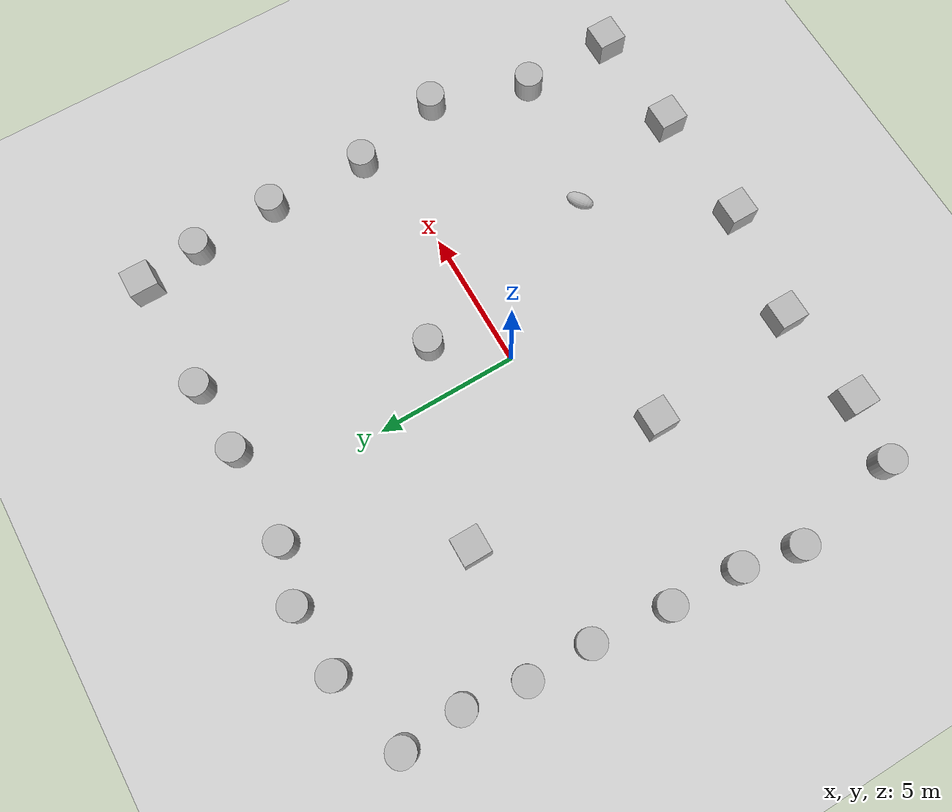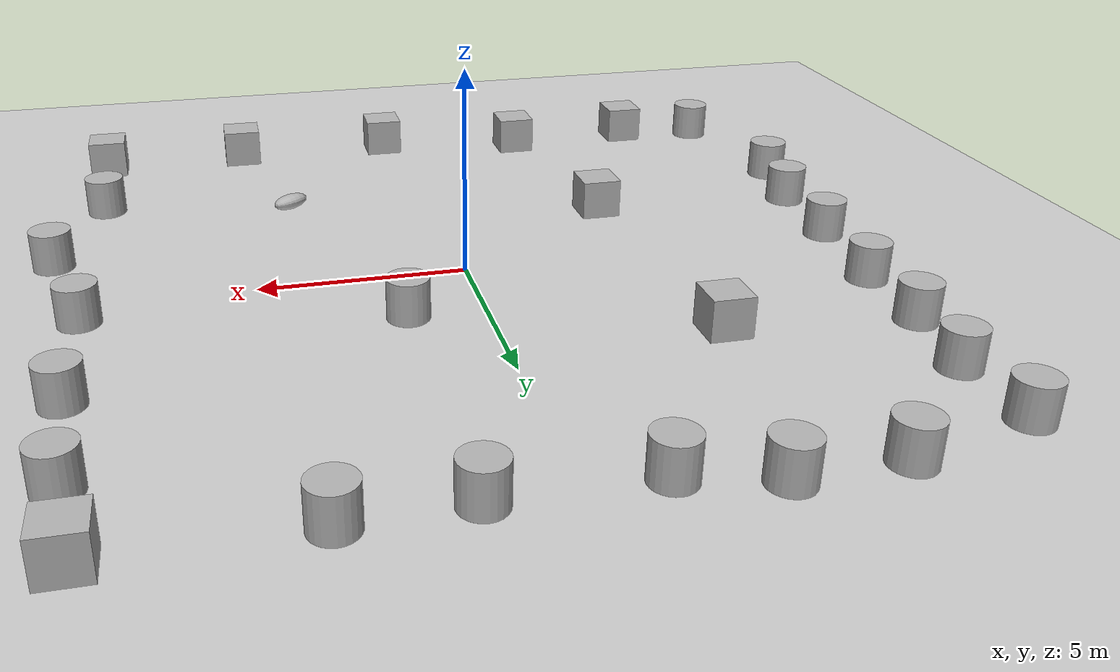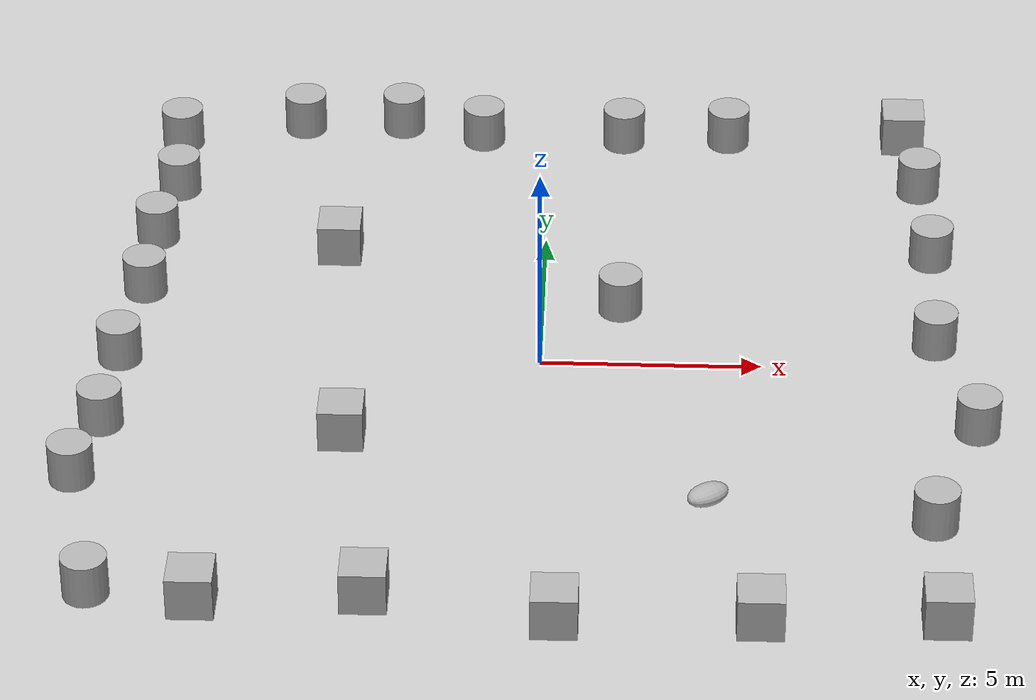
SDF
<sdf version='1.9'>
  <world name='empty'>
    <physics name='1ms' type='ignored'>
      <max_step_size>0.001</max_step_size>
      <real_time_factor>1</real_time_factor>
      <real_time_update_rate>1000</real_time_update_rate>
    </physics>
    <plugin name='gz::sim::systems::Physics' filename='ignition-gazebo-physics-system'/>
    <plugin name='gz::sim::systems::UserCommands' filename='ignition-gazebo-user-commands-system'/>
    <plugin name='gz::sim::systems::SceneBroadcaster' filename='ignition-gazebo-scene-broadcaster-system'/>
    <plugin name='gz::sim::systems::Contact' filename='ignition-gazebo-contact-system'/>
    <gravity>0 0 -9.8</gravity>
    <magnetic_field>6e-06 2.3e-05 -4.2e-05</magnetic_field>
    <atmosphere type='adiabatic'/>
    <scene>
      <ambient>0.4 0.4 0.4 1</ambient>
      <background>0.7 0.7 0.7 1</background>
      <shadows>true</shadows>
    </scene>
    <model name='ground_plane'>
      <static>true</static>
      <link name='link'>
        <collision name='collision'>
          <geometry>
            <plane>
              <normal>0 0 1</normal>
              <size>100 100</size>
            </plane>
          </geometry>
          <surface>
            <friction>
              <ode/>
            </friction>
            <bounce/>
            <contact/>
          </surface>
        </collision>
        <visual name='visual'>
          <geometry>
            <plane>
              <normal>0 0 1</normal>
              <size>100 100</size>
            </plane>
          </geometry>
          <material>
            <ambient>0.8 0.8 0.8 1</ambient>
            <diffuse>0.8 0.8 0.8 1</diffuse>
            <specular>0.8 0.8 0.8 1</specular>
          </material>
        </visual>
        <pose>0 0 0 0 -0 0</pose>
        <inertial>
          <pose>0 0 0 0 -0 0</pose>
          <mass>1</mass>
          <inertia>
            <ixx>1</ixx>
            <ixy>0</ixy>
            <ixz>0</ixz>
            <iyy>1</iyy>
            <iyz>0</iyz>
            <izz>1</izz>
          </inertia>
        </inertial>
        <enable_wind>false</enable_wind>
      </link>
      <pose>0 0 0 0 -0 0</pose>
      <self_collide>false</self_collide>
    </model>
    <model name='box'>
      <pose>8.5744 9.56283 0.5 0 0 -0</pose>
      <link name='box_link'>
        <inertial>
          <inertia>
            <ixx>0.16666</ixx>
            <ixy>0</ixy>
            <ixz>0</ixz>
            <iyy>0.16666</iyy>
            <iyz>0</iyz>
            <izz>0.16666</izz>
          </inertia>
          <mass>1</mass>
          <pose>0 0 0 0 -0 0</pose>
        </inertial>
        <collision name='box_collision'>
          <geometry>
            <box>
              <size>1 1 1</size>
            </box>
          </geometry>
          <surface>
            <friction>
              <ode/>
            </friction>
            <bounce/>
            <contact/>
          </surface>
        </collision>
        <visual name='box_visual'>
          <geometry>
            <box>
              <size>1 1 1</size>
            </box>
          </geometry>
          <material>
            <ambient>0.3 0.3 0.3 1</ambient>
            <diffuse>0.7 0.7 0.7 1</diffuse>
            <specular>1 1 1 1</specular>
          </material>
        </visual>
        <pose>0 0 0 0 -0 0</pose>
        <enable_wind>false</enable_wind>
      </link>
      <static>false</static>
      <self_collide>false</self_collide>
    </model>
    <model name='box_0'>
      <pose>8.7202 -9.15503 0.5 0 0 -0</pose>
      <link name='box_link'>
        <inertial>
          <inertia>
            <ixx>0.16666</ixx>
            <ixy>0</ixy>
            <ixz>0</ixz>
            <iyy>0.16666</iyy>
            <iyz>0</iyz>
            <izz>0.16666</izz>
          </inertia>
          <mass>1</mass>
          <pose>0 0 0 0 -0 0</pose>
        </inertial>
        <collision name='box_collision'>
          <geometry>
            <box>
              <size>1 1 1</size>
            </box>
          </geometry>
          <surface>
            <friction>
              <ode/>
            </friction>
            <bounce/>
            <contact/>
          </surface>
        </collision>
        <visual name='box_visual'>
          <geometry>
            <box>
              <size>1 1 1</size>
            </box>
          </geometry>
          <material>
            <ambient>0.3 0.3 0.3 1</ambient>
            <diffuse>0.7 0.7 0.7 1</diffuse>
            <specular>1 1 1 1</specular>
          </material>
        </visual>
        <pose>0 0 0 0 -0 0</pose>
        <enable_wind>false</enable_wind>
      </link>
      <static>false</static>
      <self_collide>false</self_collide>
    </model>
    <model name='cylinder'>
      <pose>8.94967 0.857572 0.499999 0 0 0</pose>
      <link name='cylinder_link'>
        <inertial>
          <inertia>
            <ixx>0.14580000000000001</ixx>
            <ixy>0</ixy>
            <ixz>0</ixz>
            <iyy>0.14580000000000001</iyy>
            <iyz>0</iyz>
            <izz>0.125</izz>
          </inertia>
          <mass>1</mass>
          <pose>0 0 0 0 -0 0</pose>
        </inertial>
        <collision name='cylinder_collision'>
          <geometry>
            <cylinder>
              <radius>0.5</radius>
              <length>1</length>
            </cylinder>
          </geometry>
          <surface>
            <friction>
              <ode/>
            </friction>
            <bounce/>
            <contact/>
          </surface>
        </collision>
        <visual name='cylinder_visual'>
          <geometry>
            <cylinder>
              <radius>0.5</radius>
              <length>1</length>
            </cylinder>
          </geometry>
          <material>
            <ambient>0.3 0.3 0.3 1</ambient>
            <diffuse>0.7 0.7 0.7 1</diffuse>
            <specular>1 1 1 1</specular>
          </material>
        </visual>
        <pose>0 0 0 0 -0 0</pose>
        <enable_wind>false</enable_wind>
      </link>
      <static>false</static>
      <self_collide>false</self_collide>
    </model>
    <model name='cylinder_0'>
      <pose>8.87457 7.37275 0.499999 -0 -0 0</pose>
      <link name='cylinder_link'>
        <inertial>
          <inertia>
            <ixx>0.14580000000000001</ixx>
            <ixy>0</ixy>
            <ixz>0</ixz>
            <iyy>0.14580000000000001</iyy>
            <iyz>0</iyz>
            <izz>0.125</izz>
          </inertia>
          <mass>1</mass>
          <pose>0 0 0 0 -0 0</pose>
        </inertial>
        <collision name='cylinder_collision'>
          <geometry>
            <cylinder>
              <radius>0.5</radius>
              <length>1</length>
            </cylinder>
          </geometry>
          <surface>
            <friction>
              <ode/>
            </friction>
            <bounce/>
            <contact/>
          </surface>
        </collision>
        <visual name='cylinder_visual'>
          <geometry>
            <cylinder>
              <radius>0.5</radius>
              <length>1</length>
            </cylinder>
          </geometry>
          <material>
            <ambient>0.3 0.3 0.3 1</ambient>
            <diffuse>0.7 0.7 0.7 1</diffuse>
            <specular>1 1 1 1</specular>
          </material>
        </visual>
        <pose>0 0 0 0 -0 0</pose>
        <enable_wind>false</enable_wind>
      </link>
      <static>false</static>
      <self_collide>false</self_collide>
    </model>
    <model name='cylinder_1'>
      <pose>9.03047 4.41012 0.499999 0 0 0</pose>
      <link name='cylinder_link'>
        <inertial>
          <inertia>
            <ixx>0.14580000000000001</ixx>
            <ixy>0</ixy>
            <ixz>0</ixz>
            <iyy>0.14580000000000001</iyy>
            <iyz>0</iyz>
            <izz>0.125</izz>
          </inertia>
          <mass>1</mass>
          <pose>0 0 0 0 -0 0</pose>
        </inertial>
        <collision name='cylinder_collision'>
          <geometry>
            <cylinder>
              <radius>0.5</radius>
              <length>1</length>
            </cylinder>
          </geometry>
          <surface>
            <friction>
              <ode/>
            </friction>
            <bounce/>
            <contact/>
          </surface>
        </collision>
        <visual name='cylinder_visual'>
          <geometry>
            <cylinder>
              <radius>0.5</radius>
              <length>1</length>
            </cylinder>
          </geometry>
          <material>
            <ambient>0.3 0.3 0.3 1</ambient>
            <diffuse>0.7 0.7 0.7 1</diffuse>
            <specular>1 1 1 1</specular>
          </material>
        </visual>
        <pose>0 0 0 0 -0 0</pose>
        <enable_wind>false</enable_wind>
      </link>
      <static>false</static>
      <self_collide>false</self_collide>
    </model>
    <model name='cylinder_2'>
      <pose>9.74939 -2.37277 0.499999 -0 0 0</pose>
      <link name='cylinder_link'>
        <inertial>
          <inertia>
            <ixx>0.14580000000000001</ixx>
            <ixy>0</ixy>
            <ixz>0</ixz>
            <iyy>0.14580000000000001</iyy>
            <iyz>0</iyz>
            <izz>0.125</izz>
          </inertia>
          <mass>1</mass>
          <pose>0 0 0 0 -0 0</pose>
        </inertial>
        <collision name='cylinder_collision'>
          <geometry>
            <cylinder>
              <radius>0.5</radius>
              <length>1</length>
            </cylinder>
          </geometry>
          <surface>
            <friction>
              <ode/>
            </friction>
            <bounce/>
            <contact/>
          </surface>
        </collision>
        <visual name='cylinder_visual'>
          <geometry>
            <cylinder>
              <radius>0.5</radius>
              <length>1</length>
            </cylinder>
          </geometry>
          <material>
            <ambient>0.3 0.3 0.3 1</ambient>
            <diffuse>0.7 0.7 0.7 1</diffuse>
            <specular>1 1 1 1</specular>
          </material>
        </visual>
        <pose>0 0 0 0 -0 0</pose>
        <enable_wind>false</enable_wind>
      </link>
      <static>false</static>
      <self_collide>false</self_collide>
    </model>
    <model name='cylinder_3'>
      <pose>8.65067 -5.82261 0.499999 -0 -0 -0</pose>
      <link name='cylinder_link'>
        <inertial>
          <inertia>
            <ixx>0.14580000000000001</ixx>
            <ixy>0</ixy>
            <ixz>0</ixz>
            <iyy>0.14580000000000001</iyy>
            <iyz>0</iyz>
            <izz>0.125</izz>
          </inertia>
          <mass>1</mass>
          <pose>0 0 0 0 -0 0</pose>
        </inertial>
        <collision name='cylinder_collision'>
          <geometry>
            <cylinder>
              <radius>0.5</radius>
              <length>1</length>
            </cylinder>
          </geometry>
          <surface>
            <friction>
              <ode/>
            </friction>
            <bounce/>
            <contact/>
          </surface>
        </collision>
        <visual name='cylinder_visual'>
          <geometry>
            <cylinder>
              <radius>0.5</radius>
              <length>1</length>
            </cylinder>
          </geometry>
          <material>
            <ambient>0.3 0.3 0.3 1</ambient>
            <diffuse>0.7 0.7 0.7 1</diffuse>
            <specular>1 1 1 1</specular>
          </material>
        </visual>
        <pose>0 0 0 0 -0 0</pose>
        <enable_wind>false</enable_wind>
      </link>
      <static>false</static>
      <self_collide>false</self_collide>
    </model>
    <model name='cylinder_4'>
      <pose>4.32624 9.49917 0.499999 -0 0 -0</pose>
      <link name='cylinder_link'>
        <inertial>
          <inertia>
            <ixx>0.14580000000000001</ixx>
            <ixy>0</ixy>
            <ixz>0</ixz>
            <iyy>0.14580000000000001</iyy>
            <iyz>0</iyz>
            <izz>0.125</izz>
          </inertia>
          <mass>1</mass>
          <pose>0 0 0 0 -0 0</pose>
        </inertial>
        <collision name='cylinder_collision'>
          <geometry>
            <cylinder>
              <radius>0.5</radius>
              <length>1</length>
            </cylinder>
          </geometry>
          <surface>
            <friction>
              <ode/>
            </friction>
            <bounce/>
            <contact/>
          </surface>
        </collision>
        <visual name='cylinder_visual'>
          <geometry>
            <cylinder>
              <radius>0.5</radius>
              <length>1</length>
            </cylinder>
          </geometry>
          <material>
            <ambient>0.3 0.3 0.3 1</ambient>
            <diffuse>0.7 0.7 0.7 1</diffuse>
            <specular>1 1 1 1</specular>
          </material>
        </visual>
        <pose>0 0 0 0 -0 0</pose>
        <enable_wind>false</enable_wind>
      </link>
      <static>false</static>
      <self_collide>false</self_collide>
    </model>
    <model name='cylinder_5'>
      <pose>1.7731 9.40921 0.499999 0 -0 -0</pose>
      <link name='cylinder_link'>
        <inertial>
          <inertia>
            <ixx>0.14580000000000001</ixx>
            <ixy>0</ixy>
            <ixz>0</ixz>
            <iyy>0.14580000000000001</iyy>
            <iyz>0</iyz>
            <izz>0.125</izz>
          </inertia>
          <mass>1</mass>
          <pose>0 0 0 0 -0 0</pose>
        </inertial>
        <collision name='cylinder_collision'>
          <geometry>
            <cylinder>
              <radius>0.5</radius>
              <length>1</length>
            </cylinder>
          </geometry>
          <surface>
            <friction>
              <ode/>
            </friction>
            <bounce/>
            <contact/>
          </surface>
        </collision>
        <visual name='cylinder_visual'>
          <geometry>
            <cylinder>
              <radius>0.5</radius>
              <length>1</length>
            </cylinder>
          </geometry>
          <material>
            <ambient>0.3 0.3 0.3 1</ambient>
            <diffuse>0.7 0.7 0.7 1</diffuse>
            <specular>1 1 1 1</specular>
          </material>
        </visual>
        <pose>0 0 0 0 -0 0</pose>
        <enable_wind>false</enable_wind>
      </link>
      <static>false</static>
      <self_collide>false</self_collide>
    </model>
    <model name='cylinder_6'>
      <pose>-1.65321 9.41891 0.499999 0 0 0</pose>
      <link name='cylinder_link'>
        <inertial>
          <inertia>
            <ixx>0.14580000000000001</ixx>
            <ixy>0</ixy>
            <ixz>0</ixz>
            <iyy>0.14580000000000001</iyy>
            <iyz>0</iyz>
            <izz>0.125</izz>
          </inertia>
          <mass>1</mass>
          <pose>0 0 0 0 -0 0</pose>
        </inertial>
        <collision name='cylinder_collision'>
          <geometry>
            <cylinder>
              <radius>0.5</radius>
              <length>1</length>
            </cylinder>
          </geometry>
          <surface>
            <friction>
              <ode/>
            </friction>
            <bounce/>
            <contact/>
          </surface>
        </collision>
        <visual name='cylinder_visual'>
          <geometry>
            <cylinder>
              <radius>0.5</radius>
              <length>1</length>
            </cylinder>
          </geometry>
          <material>
            <ambient>0.3 0.3 0.3 1</ambient>
            <diffuse>0.7 0.7 0.7 1</diffuse>
            <specular>1 1 1 1</specular>
          </material>
        </visual>
        <pose>0 0 0 0 -0 0</pose>
        <enable_wind>false</enable_wind>
      </link>
      <static>false</static>
      <self_collide>false</self_collide>
    </model>
    <model name='cylinder_7'>
      <pose>-3.64401 9.94116 0.499999 -0 -0 -0</pose>
      <link name='cylinder_link'>
        <inertial>
          <inertia>
            <ixx>0.14580000000000001</ixx>
            <ixy>0</ixy>
            <ixz>0</ixz>
            <iyy>0.14580000000000001</iyy>
            <iyz>0</iyz>
            <izz>0.125</izz>
          </inertia>
          <mass>1</mass>
          <pose>0 0 0 0 -0 0</pose>
        </inertial>
        <collision name='cylinder_collision'>
          <geometry>
            <cylinder>
              <radius>0.5</radius>
              <length>1</length>
            </cylinder>
          </geometry>
          <surface>
            <friction>
              <ode/>
            </friction>
            <bounce/>
            <contact/>
          </surface>
        </collision>
        <visual name='cylinder_visual'>
          <geometry>
            <cylinder>
              <radius>0.5</radius>
              <length>1</length>
            </cylinder>
          </geometry>
          <material>
            <ambient>0.3 0.3 0.3 1</ambient>
            <diffuse>0.7 0.7 0.7 1</diffuse>
            <specular>1 1 1 1</specular>
          </material>
        </visual>
        <pose>0 0 0 0 -0 0</pose>
        <enable_wind>false</enable_wind>
      </link>
      <static>false</static>
      <self_collide>false</self_collide>
    </model>
    <model name='cylinder_8'>
      <pose>-6.05976 9.85279 0.499999 0 -0 0</pose>
      <link name='cylinder_link'>
        <inertial>
          <inertia>
            <ixx>0.14580000000000001</ixx>
            <ixy>0</ixy>
            <ixz>0</ixz>
            <iyy>0.14580000000000001</iyy>
            <iyz>0</iyz>
            <izz>0.125</izz>
          </inertia>
          <mass>1</mass>
          <pose>0 0 0 0 -0 0</pose>
        </inertial>
        <collision name='cylinder_collision'>
          <geometry>
            <cylinder>
              <radius>0.5</radius>
              <length>1</length>
            </cylinder>
          </geometry>
          <surface>
            <friction>
              <ode/>
            </friction>
            <bounce/>
            <contact/>
          </surface>
        </collision>
        <visual name='cylinder_visual'>
          <geometry>
            <cylinder>
              <radius>0.5</radius>
              <length>1</length>
            </cylinder>
          </geometry>
          <material>
            <ambient>0.3 0.3 0.3 1</ambient>
            <diffuse>0.7 0.7 0.7 1</diffuse>
            <specular>1 1 1 1</specular>
          </material>
        </visual>
        <pose>0 0 0 0 -0 0</pose>
        <enable_wind>false</enable_wind>
      </link>
      <static>false</static>
      <self_collide>false</self_collide>
    </model>
    <model name='cylinder_9'>
      <pose>-9.01807 9.08427 0.499999 0 -0 -0</pose>
      <link name='cylinder_link'>
        <inertial>
          <inertia>
            <ixx>0.14580000000000001</ixx>
            <ixy>0</ixy>
            <ixz>0</ixz>
            <iyy>0.14580000000000001</iyy>
            <iyz>0</iyz>
            <izz>0.125</izz>
          </inertia>
          <mass>1</mass>
          <pose>0 0 0 0 -0 0</pose>
        </inertial>
        <collision name='cylinder_collision'>
          <geometry>
            <cylinder>
              <radius>0.5</radius>
              <length>1</length>
            </cylinder>
          </geometry>
          <surface>
            <friction>
              <ode/>
            </friction>
            <bounce/>
            <contact/>
          </surface>
        </collision>
        <visual name='cylinder_visual'>
          <geometry>
            <cylinder>
              <radius>0.5</radius>
              <length>1</length>
            </cylinder>
          </geometry>
          <material>
            <ambient>0.3 0.3 0.3 1</ambient>
            <diffuse>0.7 0.7 0.7 1</diffuse>
            <specular>1 1 1 1</specular>
          </material>
        </visual>
        <pose>0 0 0 0 -0 0</pose>
        <enable_wind>false</enable_wind>
      </link>
      <static>false</static>
      <self_collide>false</self_collide>
    </model>
    <model name='cylinder_10'>
      <pose>-8.88274 6.95423 0.499999 -0 0 -0</pose>
      <link name='cylinder_link'>
        <inertial>
          <inertia>
            <ixx>0.14580000000000001</ixx>
            <ixy>0</ixy>
            <ixz>0</ixz>
            <iyy>0.14580000000000001</iyy>
            <iyz>0</iyz>
            <izz>0.125</izz>
          </inertia>
          <mass>1</mass>
          <pose>0 0 0 0 -0 0</pose>
        </inertial>
        <collision name='cylinder_collision'>
          <geometry>
            <cylinder>
              <radius>0.5</radius>
              <length>1</length>
            </cylinder>
          </geometry>
          <surface>
            <friction>
              <ode/>
            </friction>
            <bounce/>
            <contact/>
          </surface>
        </collision>
        <visual name='cylinder_visual'>
          <geometry>
            <cylinder>
              <radius>0.5</radius>
              <length>1</length>
            </cylinder>
          </geometry>
          <material>
            <ambient>0.3 0.3 0.3 1</ambient>
            <diffuse>0.7 0.7 0.7 1</diffuse>
            <specular>1 1 1 1</specular>
          </material>
        </visual>
        <pose>0 0 0 0 -0 0</pose>
        <enable_wind>false</enable_wind>
      </link>
      <static>false</static>
      <self_collide>false</self_collide>
    </model>
    <model name='cylinder_11'>
      <pose>-9.18817 4.83261 0.499999 0 0 0</pose>
      <link name='cylinder_link'>
        <inertial>
          <inertia>
            <ixx>0.14580000000000001</ixx>
            <ixy>0</ixy>
            <ixz>0</ixz>
            <iyy>0.14580000000000001</iyy>
            <iyz>0</iyz>
            <izz>0.125</izz>
          </inertia>
          <mass>1</mass>
          <pose>0 0 0 0 -0 0</pose>
        </inertial>
        <collision name='cylinder_collision'>
          <geometry>
            <cylinder>
              <radius>0.5</radius>
              <length>1</length>
            </cylinder>
          </geometry>
          <surface>
            <friction>
              <ode/>
            </friction>
            <bounce/>
            <contact/>
          </surface>
        </collision>
        <visual name='cylinder_visual'>
          <geometry>
            <cylinder>
              <radius>0.5</radius>
              <length>1</length>
            </cylinder>
          </geometry>
          <material>
            <ambient>0.3 0.3 0.3 1</ambient>
            <diffuse>0.7 0.7 0.7 1</diffuse>
            <specular>1 1 1 1</specular>
          </material>
        </visual>
        <pose>0 0 0 0 -0 0</pose>
        <enable_wind>false</enable_wind>
      </link>
      <static>false</static>
      <self_collide>false</self_collide>
    </model>
    <model name='cylinder_12'>
      <pose>-9.24109 2.59309 0.499999 0 0 0</pose>
      <link name='cylinder_link'>
        <inertial>
          <inertia>
            <ixx>0.14580000000000001</ixx>
            <ixy>0</ixy>
            <ixz>0</ixz>
            <iyy>0.14580000000000001</iyy>
            <iyz>0</iyz>
            <izz>0.125</izz>
          </inertia>
          <mass>1</mass>
          <pose>0 0 0 0 -0 0</pose>
        </inertial>
        <collision name='cylinder_collision'>
          <geometry>
            <cylinder>
              <radius>0.5</radius>
              <length>1</length>
            </cylinder>
          </geometry>
          <surface>
            <friction>
              <ode/>
            </friction>
            <bounce/>
            <contact/>
          </surface>
        </collision>
        <visual name='cylinder_visual'>
          <geometry>
            <cylinder>
              <radius>0.5</radius>
              <length>1</length>
            </cylinder>
          </geometry>
          <material>
            <ambient>0.3 0.3 0.3 1</ambient>
            <diffuse>0.7 0.7 0.7 1</diffuse>
            <specular>1 1 1 1</specular>
          </material>
        </visual>
        <pose>0 0 0 0 -0 0</pose>
        <enable_wind>false</enable_wind>
      </link>
      <static>false</static>
      <self_collide>false</self_collide>
    </model>
    <model name='cylinder_13'>
      <pose>-9.53051 -0.128736 0.499999 -0 0 -0</pose>
      <link name='cylinder_link'>
        <inertial>
          <inertia>
            <ixx>0.14580000000000001</ixx>
            <ixy>0</ixy>
            <ixz>0</ixz>
            <iyy>0.14580000000000001</iyy>
            <iyz>0</iyz>
            <izz>0.125</izz>
          </inertia>
          <mass>1</mass>
          <pose>0 0 0 0 -0 0</pose>
        </inertial>
        <collision name='cylinder_collision'>
          <geometry>
            <cylinder>
              <radius>0.5</radius>
              <length>1</length>
            </cylinder>
          </geometry>
          <surface>
            <friction>
              <ode/>
            </friction>
            <bounce/>
            <contact/>
          </surface>
        </collision>
        <visual name='cylinder_visual'>
          <geometry>
            <cylinder>
              <radius>0.5</radius>
              <length>1</length>
            </cylinder>
          </geometry>
          <material>
            <ambient>0.3 0.3 0.3 1</ambient>
            <diffuse>0.7 0.7 0.7 1</diffuse>
            <specular>1 1 1 1</specular>
          </material>
        </visual>
        <pose>0 0 0 0 -0 0</pose>
        <enable_wind>false</enable_wind>
      </link>
      <static>false</static>
      <self_collide>false</self_collide>
    </model>
    <model name='cylinder_14'>
      <pose>-9.66911 -2.64317 0.499999 0 0 0</pose>
      <link name='cylinder_link'>
        <inertial>
          <inertia>
            <ixx>0.14580000000000001</ixx>
            <ixy>0</ixy>
            <ixz>0</ixz>
            <iyy>0.14580000000000001</iyy>
            <iyz>0</iyz>
            <izz>0.125</izz>
          </inertia>
          <mass>1</mass>
          <pose>0 0 0 0 -0 0</pose>
        </inertial>
        <collision name='cylinder_collision'>
          <geometry>
            <cylinder>
              <radius>0.5</radius>
              <length>1</length>
            </cylinder>
          </geometry>
          <surface>
            <friction>
              <ode/>
            </friction>
            <bounce/>
            <contact/>
          </surface>
        </collision>
        <visual name='cylinder_visual'>
          <geometry>
            <cylinder>
              <radius>0.5</radius>
              <length>1</length>
            </cylinder>
          </geometry>
          <material>
            <ambient>0.3 0.3 0.3 1</ambient>
            <diffuse>0.7 0.7 0.7 1</diffuse>
            <specular>1 1 1 1</specular>
          </material>
        </visual>
        <pose>0 0 0 0 -0 0</pose>
        <enable_wind>false</enable_wind>
      </link>
      <static>false</static>
      <self_collide>false</self_collide>
    </model>
    <model name='cylinder_15'>
      <pose>-10.0701 -4.69324 0.499999 0 0 -0</pose>
      <link name='cylinder_link'>
        <inertial>
          <inertia>
            <ixx>0.14580000000000001</ixx>
            <ixy>0</ixy>
            <ixz>0</ixz>
            <iyy>0.14580000000000001</iyy>
            <iyz>0</iyz>
            <izz>0.125</izz>
          </inertia>
          <mass>1</mass>
          <pose>0 0 0 0 -0 0</pose>
        </inertial>
        <collision name='cylinder_collision'>
          <geometry>
            <cylinder>
              <radius>0.5</radius>
              <length>1</length>
            </cylinder>
          </geometry>
          <surface>
            <friction>
              <ode/>
            </friction>
            <bounce/>
            <contact/>
          </surface>
        </collision>
        <visual name='cylinder_visual'>
          <geometry>
            <cylinder>
              <radius>0.5</radius>
              <length>1</length>
            </cylinder>
          </geometry>
          <material>
            <ambient>0.3 0.3 0.3 1</ambient>
            <diffuse>0.7 0.7 0.7 1</diffuse>
            <specular>1 1 1 1</specular>
          </material>
        </visual>
        <pose>0 0 0 0 -0 0</pose>
        <enable_wind>false</enable_wind>
      </link>
      <static>false</static>
      <self_collide>false</self_collide>
    </model>
    <model name='cylinder_16'>
      <pose>-9.27877 -8.67694 0.499999 0 -0 0</pose>
      <link name='cylinder_link'>
        <inertial>
          <inertia>
            <ixx>0.14580000000000001</ixx>
            <ixy>0</ixy>
            <ixz>0</ixz>
            <iyy>0.14580000000000001</iyy>
            <iyz>0</iyz>
            <izz>0.125</izz>
          </inertia>
          <mass>1</mass>
          <pose>0 0 0 0 -0 0</pose>
        </inertial>
        <collision name='cylinder_collision'>
          <geometry>
            <cylinder>
              <radius>0.5</radius>
              <length>1</length>
            </cylinder>
          </geometry>
          <surface>
            <friction>
              <ode/>
            </friction>
            <bounce/>
            <contact/>
          </surface>
        </collision>
        <visual name='cylinder_visual'>
          <geometry>
            <cylinder>
              <radius>0.5</radius>
              <length>1</length>
            </cylinder>
          </geometry>
          <material>
            <ambient>0.3 0.3 0.3 1</ambient>
            <diffuse>0.7 0.7 0.7 1</diffuse>
            <specular>1 1 1 1</specular>
          </material>
        </visual>
        <pose>0 0 0 0 -0 0</pose>
        <enable_wind>false</enable_wind>
      </link>
      <static>false</static>
      <self_collide>false</self_collide>
    </model>
    <model name='box_1'>
      <pose>4.84912 -9.31337 0.5 0 0 -0</pose>
      <link name='box_link'>
        <inertial>
          <inertia>
            <ixx>0.16666</ixx>
            <ixy>0</ixy>
            <ixz>0</ixz>
            <iyy>0.16666</iyy>
            <iyz>0</iyz>
            <izz>0.16666</izz>
          </inertia>
          <mass>1</mass>
          <pose>0 0 0 0 -0 0</pose>
        </inertial>
        <collision name='box_collision'>
          <geometry>
            <box>
              <size>1 1 1</size>
            </box>
          </geometry>
          <surface>
            <friction>
              <ode/>
            </friction>
            <bounce/>
            <contact/>
          </surface>
        </collision>
        <visual name='box_visual'>
          <geometry>
            <box>
              <size>1 1 1</size>
            </box>
          </geometry>
          <material>
            <ambient>0.3 0.3 0.3 1</ambient>
            <diffuse>0.7 0.7 0.7 1</diffuse>
            <specular>1 1 1 1</specular>
          </material>
        </visual>
        <pose>0 0 0 0 -0 0</pose>
        <enable_wind>false</enable_wind>
      </link>
      <static>false</static>
      <self_collide>false</self_collide>
    </model>
    <model name='box_2'>
      <pose>0.571807 -9.41408 0.5 0 0 -0</pose>
      <link name='box_link'>
        <inertial>
          <inertia>
            <ixx>0.16666</ixx>
            <ixy>0</ixy>
            <ixz>0</ixz>
            <iyy>0.16666</iyy>
            <iyz>0</iyz>
            <izz>0.16666</izz>
          </inertia>
          <mass>1</mass>
          <pose>0 0 0 0 -0 0</pose>
        </inertial>
        <collision name='box_collision'>
          <geometry>
            <box>
              <size>1 1 1</size>
            </box>
          </geometry>
          <surface>
            <friction>
              <ode/>
            </friction>
            <bounce/>
            <contact/>
          </surface>
        </collision>
        <visual name='box_visual'>
          <geometry>
            <box>
              <size>1 1 1</size>
            </box>
          </geometry>
          <material>
            <ambient>0.3 0.3 0.3 1</ambient>
            <diffuse>0.7 0.7 0.7 1</diffuse>
            <specular>1 1 1 1</specular>
          </material>
        </visual>
        <pose>0 0 0 0 -0 0</pose>
        <enable_wind>false</enable_wind>
      </link>
      <static>false</static>
      <self_collide>false</self_collide>
    </model>
    <model name='box_3'>
      <pose>-3.42803 -8.70154 0.5 0 0 -0</pose>
      <link name='box_link'>
        <inertial>
          <inertia>
            <ixx>0.16666</ixx>
            <ixy>0</ixy>
            <ixz>0</ixz>
            <iyy>0.16666</iyy>
            <iyz>0</iyz>
            <izz>0.16666</izz>
          </inertia>
          <mass>1</mass>
          <pose>0 0 0 0 -0 0</pose>
        </inertial>
        <collision name='box_collision'>
          <geometry>
            <box>
              <size>1 1 1</size>
            </box>
          </geometry>
          <surface>
            <friction>
              <ode/>
            </friction>
            <bounce/>
            <contact/>
          </surface>
        </collision>
        <visual name='box_visual'>
          <geometry>
            <box>
              <size>1 1 1</size>
            </box>
          </geometry>
          <material>
            <ambient>0.3 0.3 0.3 1</ambient>
            <diffuse>0.7 0.7 0.7 1</diffuse>
            <specular>1 1 1 1</specular>
          </material>
        </visual>
        <pose>0 0 0 0 -0 0</pose>
        <enable_wind>false</enable_wind>
      </link>
      <static>false</static>
      <self_collide>false</self_collide>
    </model>
    <model name='box_4'>
      <pose>-7.01434 -8.99252 0.5 0 0 -0</pose>
      <link name='box_link'>
        <inertial>
          <inertia>
            <ixx>0.16666</ixx>
            <ixy>0</ixy>
            <ixz>0</ixz>
            <iyy>0.16666</iyy>
            <iyz>0</iyz>
            <izz>0.16666</izz>
          </inertia>
          <mass>1</mass>
          <pose>0 0 0 0 -0 0</pose>
        </inertial>
        <collision name='box_collision'>
          <geometry>
            <box>
              <size>1 1 1</size>
            </box>
          </geometry>
          <surface>
            <friction>
              <ode/>
            </friction>
            <bounce/>
            <contact/>
          </surface>
        </collision>
        <visual name='box_visual'>
          <geometry>
            <box>
              <size>1 1 1</size>
            </box>
          </geometry>
          <material>
            <ambient>0.3 0.3 0.3 1</ambient>
            <diffuse>0.7 0.7 0.7 1</diffuse>
            <specular>1 1 1 1</specular>
          </material>
        </visual>
        <pose>0 0 0 0 -0 0</pose>
        <enable_wind>false</enable_wind>
      </link>
      <static>false</static>
      <self_collide>false</self_collide>
    </model>
    <model name='cylinder_17'>
      <pose>1.78248 2.17216 0.499999 0 -0 0</pose>
      <link name='cylinder_link'>
        <inertial>
          <inertia>
            <ixx>0.14580000000000001</ixx>
            <ixy>0</ixy>
            <ixz>0</ixz>
            <iyy>0.14580000000000001</iyy>
            <iyz>0</iyz>
            <izz>0.125</izz>
          </inertia>
          <mass>1</mass>
          <pose>0 0 0 0 -0 0</pose>
        </inertial>
        <collision name='cylinder_collision'>
          <geometry>
            <cylinder>
              <radius>0.5</radius>
              <length>1</length>
            </cylinder>
          </geometry>
          <surface>
            <friction>
              <ode/>
            </friction>
            <bounce/>
            <contact/>
          </surface>
        </collision>
        <visual name='cylinder_visual'>
          <geometry>
            <cylinder>
              <radius>0.5</radius>
              <length>1</length>
            </cylinder>
          </geometry>
          <material>
            <ambient>0.3 0.3 0.3 1</ambient>
            <diffuse>0.7 0.7 0.7 1</diffuse>
            <specular>1 1 1 1</specular>
          </material>
        </visual>
        <pose>0 0 0 0 -0 0</pose>
        <enable_wind>false</enable_wind>
      </link>
      <static>false</static>
      <self_collide>false</self_collide>
    </model>
    <model name='box_5'>
      <pose>-4.29048 -3.00801 0.5 0 0 -0</pose>
      <link name='box_link'>
        <inertial>
          <inertia>
            <ixx>0.16666</ixx>
            <ixy>0</ixy>
            <ixz>0</ixz>
            <iyy>0.16666</iyy>
            <iyz>0</iyz>
            <izz>0.16666</izz>
          </inertia>
          <mass>1</mass>
          <pose>0 0 0 0 -0 0</pose>
        </inertial>
        <collision name='box_collision'>
          <geometry>
            <box>
              <size>1 1 1</size>
            </box>
          </geometry>
          <surface>
            <friction>
              <ode/>
            </friction>
            <bounce/>
            <contact/>
          </surface>
        </collision>
        <visual name='box_visual'>
          <geometry>
            <box>
              <size>1 1 1</size>
            </box>
          </geometry>
          <material>
            <ambient>0.3 0.3 0.3 1</ambient>
            <diffuse>0.7 0.7 0.7 1</diffuse>
            <specular>1 1 1 1</specular>
          </material>
        </visual>
        <pose>0 0 0 0 -0 0</pose>
        <enable_wind>false</enable_wind>
      </link>
      <static>false</static>
      <self_collide>false</self_collide>
    </model>
    <model name='box_6'>
      <pose>-4.82388 4.31283 0.5 0 0 -0</pose>
      <link name='box_link'>
        <inertial>
          <inertia>
            <ixx>0.16666</ixx>
            <ixy>0</ixy>
            <ixz>0</ixz>
            <iyy>0.16666</iyy>
            <iyz>0</iyz>
            <izz>0.16666</izz>
          </inertia>
          <mass>1</mass>
          <pose>0 0 0 0 -0 0</pose>
        </inertial>
        <collision name='box_collision'>
          <geometry>
            <box>
              <size>1 1 1</size>
            </box>
          </geometry>
          <surface>
            <friction>
              <ode/>
            </friction>
            <bounce/>
            <contact/>
          </surface>
        </collision>
        <visual name='box_visual'>
          <geometry>
            <box>
              <size>1 1 1</size>
            </box>
          </geometry>
          <material>
            <ambient>0.3 0.3 0.3 1</ambient>
            <diffuse>0.7 0.7 0.7 1</diffuse>
            <specular>1 1 1 1</specular>
          </material>
        </visual>
        <pose>0 0 0 0 -0 0</pose>
        <enable_wind>false</enable_wind>
      </link>
      <static>false</static>
      <self_collide>false</self_collide>
    </model>
    <model name='ellipsoid'>
      <pose>3.77506 -5.05373 0.186668 1.5708 -1.37749 -0.982463</pose>
      <link name='ellipsoid_link'>
        <inertial>
          <inertia>
            <ixx>0.068000000000000005</ixx>
            <ixy>0</ixy>
            <ixz>0</ixz>
            <iyy>0.058000000000000003</iyy>
            <iyz>0</iyz>
            <izz>0.025999999999999999</izz>
          </inertia>
          <mass>1</mass>
          <pose>0 0 0 0 -0 0</pose>
        </inertial>
        <collision name='ellipsoid_collision'>
          <geometry>
            <ellipsoid>
              <radii>0.2 0.3 0.5</radii>
            </ellipsoid>
          </geometry>
          <surface>
            <friction>
              <ode/>
            </friction>
            <bounce/>
            <contact/>
          </surface>
        </collision>
        <visual name='ellipsoid_visual'>
          <geometry>
            <ellipsoid>
              <radii>0.2 0.3 0.5</radii>
            </ellipsoid>
          </geometry>
          <material>
            <ambient>0.3 0.3 0.3 1</ambient>
            <diffuse>0.7 0.7 0.7 1</diffuse>
            <specular>1 1 1 1</specular>
          </material>
        </visual>
        <pose>0 0 0 0 -0 0</pose>
        <enable_wind>false</enable_wind>
      </link>
      <static>false</static>
      <self_collide>false</self_collide>
    </model>
    <light name='sun' type='directional'>
      <pose>0 0 10 0 -0 0</pose>
      <cast_shadows>true</cast_shadows>
      <intensity>1</intensity>
      <direction>-0.5 0.1 -0.9</direction>
      <diffuse>0.8 0.8 0.8 1</diffuse>
      <specular>0.2 0.2 0.2 1</specular>
      <attenuation>
        <range>1000</range>
        <linear>0.01</linear>
        <constant>0.90000000000000002</constant>
        <quadratic>0.001</quadratic>
      </attenuation>
      <spot>
        <inner_angle>0</inner_angle>
        <outer_angle>0</outer_angle>
        <falloff>0</falloff>
      </spot>
    </light>
  </world>
</sdf>
